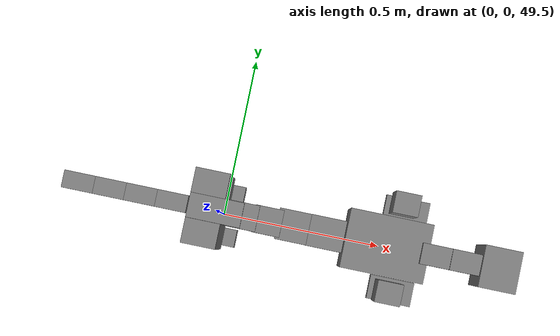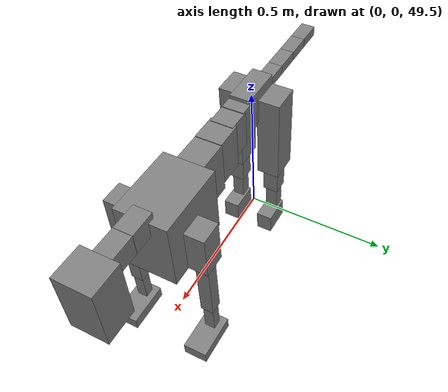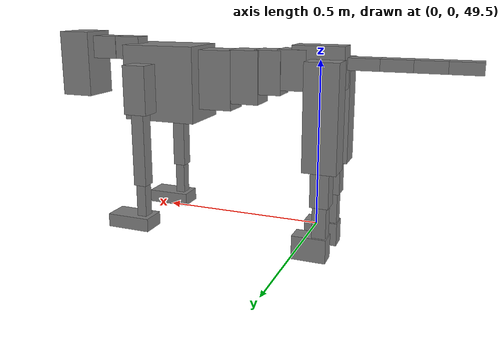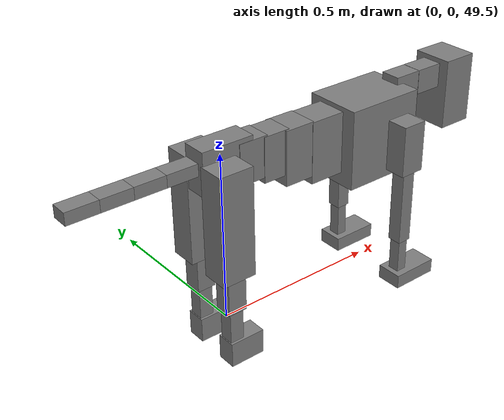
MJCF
<mujoco model="dog">

    <default>
        <joint armature="0.02" stiffness="1" damping="0.2" limited="true"/>
        <geom condim="3" friction="1 0.05 0.05" margin="0.01"/>
        <motor ctrllimited="true" ctrlrange="-1.0 1.0" forcelimited="true" gear="50"/>
    </default>

    <compiler inertiafromgeom="true" angle="radian"/>

    <option timestep="0.016" iterations="50" tolerance="1e-10" solver="Newton" jacobian="dense" cone="pyramidal"/>

    <size nconmax="20000" njmax="60000" nstack="5000000"/>
    <visual>
        <map force="0.1" zfar="30"/>
        <rgba haze="0.15 0.25 0.35 1"/>
        <quality shadowsize="2048"/>
        <global offwidth="800" offheight="800"/>
    </visual>

    <asset>
        <texture type="skybox" builtin="gradient" rgb1="0.3 0.5 0.7" rgb2="0 0 0" width="512" height="512"/>
        <texture name="texplane" type="2d" builtin="checker" rgb1=".2 .3 .4" rgb2=".1 0.15 0.2" width="512" height="512"
                 mark="cross" markrgb=".8 .8 .8"/>
        <texture name="texgeom" type="cube" builtin="flat" mark="cross" width="127" height="1278" rgb1="0.8 0.6 0.4"
                 rgb2="0.8 0.6 0.4" markrgb="1 1 1" random="0.01"/>

        <material name="matplane" reflectance="0.3" texture="texplane" texrepeat="1 1" texuniform="true"/>
        <material name="matgeom" texture="texgeom" texuniform="true" rgba="0.8 0.6 .4 1"/>
    </asset>

    <worldbody>
        <geom name="floor" pos="0 0 0" size="0 0 .25" type="plane" material="matplane" condim="3"/>

        <light directional="false" diffuse=".2 .2 .2" specular="0 0 0" pos="0 0 5" dir="0 0 -1" castshadow="false"/>
        <light mode="targetbodycom" target="torso" directional="false" diffuse=".8 .8 .8" specular="0.3 0.3 0.3"
               pos="0 0 4.0" dir="0 0 -1"/>

        <body name="root" pos="0 0 50">
            <freejoint name="root_1"/>
            <geom type="box" pos="0 0 -0.02" size="0.0774  0.0358  0.063" density="2030"/>

            <body name="spine1" pos="0.054 0 0">
                <joint name="spine1_y" axis="0 1 0" range="0 0.7" limited="true"/>
                <geom type="box" pos="0.02375 0 -0.03" size="0.04375  0.0375  0.05985" density="2030"/>

                <body name="spine2" pos="0.0612 0 0">
                    <joint name="spine2_y" axis="0 1 0" range="-0.15 0.15" limited="true"/>
                    <geom type="box" pos="0.03555  0  -0.04" size="0.04055  0.039  0.06615" density="2030"/>

                    <body name="spine3" pos="0.0730 0 0">
                        <joint name="spine3_y" axis="0 1 0" range="-0.15 0.15" limited="true"/>
                        <geom type="box" pos="0.03555  0  -0.057" size="0.04555  0.0445  0.081" density="2030"/>

                        <body name="spine4" pos="0.0780 0 0">
                            <joint name="spine4_y" axis="0 1 0" range="-0.15 0.15" limited="true"/>
                            <geom type="box" pos="0.05265  0  -0.07" size="0.05265  0.045  0.09135" density="2030"/>

                            <body name="torso" pos="0.1082 0 0">
                                <joint name="torso_y" axis="0 1 0" range="-0.15 0.15" limited="true"/>
                                <geom type="box" pos="0.11925  0  -0.085" size="0.11925  0.085  0.11745"
                                      density="2030"/>

                                <body name="neck1" pos="0.2160  0   0.0180">
                                    <joint name="neck1_y" axis="0 1 0" range="-1.2  -1" limited="true"/>
                                    <geom type="box" pos="0.0423  0  0" size="0.0423  0.03  0.036" density="2325"/>

                                    <body name="neck2" pos="0.0853  0  0">
                                        <joint name="neck2_y" axis="0 1 0" range="0.1  0" limited="true"/>
                                        <geom type="box" pos="0.0423  0  0" size="0.0423  0.03  0.036" density="2325"/>

                                        <body name="head" pos="0.0853  0  0">
                                            <joint name="head_y" axis="0 1 0" range="-0.3  -0.2" limited="true"/>
                                            <geom type="box" pos="0.0531  0  -0.055" size="0.0531  0.06  0.1044"
                                                  density="4030"/>

                                        </body>
                                    </body>
                                </body>

                                <body name="front_shoulder" pos="0.156  0   -0.0480">
                                    <joint name="front_shoulder_y" axis="0 1 0" range="-1 1.5" limited="true"/>
                                    <geom type="box" pos="0 0.13 -0.0483" size="0.0372  0.0318  0.0750" density="1158"/>
                                    <geom type="box" pos="0 -0.13 -0.0483" size="0.0372  0.0318  0.0750"
                                          density="1158"/>

                                    <body name="front_elbow" pos="0  0  -0.0967">
                                        <joint name="front_elbow_y" axis="0 1 0" range="-2 0" limited="true"/>
                                        <geom type="box" pos="0 0.13 -0.1267" size="0.0206  0.0211  0.1267"
                                              density="1081"/>
                                        <geom type="box" pos="0 -0.13 -0.1267" size="0.0206  0.0211  0.1267"
                                              density="1081"/>

                                        <body name="front_wrist" pos="0  0  -0.2533">
                                            <joint name="front_wrist_y" axis="0 1 0" range="-0.2 0" limited="true"/>
                                            <geom type="box" pos="0 0.13 -0.0580" size="0.0156  0.0173  0.0711"
                                                  density="1664"/>
                                            <geom type="box" pos="0 -0.13 -0.0580" size="0.0156  0.0173  0.0711"
                                                  density="1664"/>

                                            <body name="front_finger_end" pos="0  0  -0.1159">
                                                <joint name="front_finger_y" axis="0 1 0" range="-0.4 1"
                                                       limited="true"/>
                                                <geom type="box" pos="0.0386  0.13  -0.0059"
                                                      size="0.0707  0.0386  0.0209" density="1515"/>
                                                <geom type="box" pos="0.0386  -0.13  -0.0059"
                                                      size="0.0707  0.0386  0.0209" density="1515"/>

                                            </body>

                                        </body>
                                    </body>
                                </body>

                            </body>
                        </body>
                    </body>
                </body>
            </body>

            <body name="back_hip" pos="-0.03 0 -0.018">
                <joint name="back_hip_y" axis="0 1 0" range="-1.5 0.3" limited="true"/>
                <geom type="box" pos="0 0.07 -0.1355" size="0.0505  0.0396  0.1583" density="1154"/>
                <geom type="box" pos="0 -0.07 -0.1355" size="0.0505  0.0396  0.1583" density="1154"/>

                <body name="back_knee" pos="0  0  -0.2710">
                    <joint name="back_knee_y" axis="0 1 0" range="0 2.8" limited="true"/>
                    <geom type="box" pos="0 0.07 -0.0563" size="0.0278  0.0274  0.0718" density="1227"/>
                    <geom type="box" pos="0 -0.07 -0.0563" size="0.0278  0.0274  0.0718" density="1227"/>

                    <body name="back_ankle" pos="0  0  -0.1125">
                        <joint name="back_ankle_y" axis="0 1 0" range="-2.2 0" limited="true"/>
                        <geom type="box" pos="0 0.07 -0.0629" size="0.0209  0.0209  0.0742" density="1284"/>
                        <geom type="box" pos="0 -0.07 -0.0629" size="0.0209  0.0209  0.0742" density="1284"/>

                        <body name="back_toe_end" pos="0  0  -0.1258">
                            <joint name="back_toe_y" axis="0 1 0" range="-0.4 1" limited="true"/>
                            <geom type="box" pos="0.0284  0.07  -0.0219" size="0.0521  0.0284  0.0369" density="1515"/>
                            <geom type="box" pos="0.0284  -0.07  -0.0219" size="0.0521  0.0284  0.0369" density="1515"/>

                        </body>
                    </body>
                </body>
            </body>

            <body name="tail1" pos="-0.074 0 -0.006">
                <joint name="tail1_y" axis="0 1 0" range="-0.2 0.2" limited="true"/>
                <geom type="box" pos="-0.0536  0  0" size="0.045  0.025  0.0175" density="1587"/>

                <body name="tail2" pos="-0.09 0 0">
                    <joint name="tail2_y" axis="0 1 0" range="-0.2 0.2" limited="true"/>
                    <geom type="box" pos="-0.0536  0  0" size="0.045  0.025  0.0175" density="1587"/>

                    <body name="tail3" pos="-0.09 0 0">
                        <joint name="tail3_y" axis="0 1 0" range="-0.2 0.2" limited="true"/>
                        <geom type="box" pos="-0.0536  0  0" size="0.045  0.025  0.0175" density="1587"/>

                        <body name="tail4" pos="-0.09 0 0">
                            <joint name="tail4_y" axis="0 1 0" range="-0.2 0.2" limited="true"/>
                            <geom type="box" pos="-0.0536  0  0" size="0.045  0.025  0.0175" density="1587"/>

                        </body>
                    </body>
                </body>
            </body>
        </body>
    </worldbody>

    <actuator>
        <motor joint="spine1_y" forcerange="-150 150     "/>
        <motor joint="spine2_y" forcerange="-150 150     "/>
        <motor joint="spine3_y" forcerange="-150 150     "/>
        <motor joint="spine4_y" forcerange="-150 150     "/>
        <motor joint="torso_y" forcerange="-150 150     "/>
        <motor joint="neck1_y" forcerange="-100 100       "/>
        <motor joint="neck2_y" forcerange="-100 100       "/>
        <motor joint="head_y" forcerange="-150 150       "/>
        <motor joint="front_shoulder_y" forcerange="-181.27 130.44"/>
        <motor joint="front_elbow_y" forcerange="-107.34 145.88"/>
        <motor joint="front_wrist_y" forcerange="-87.28 51.24"/>
        <motor joint="front_finger_y" forcerange="-71.11 94.51"/>
        <motor joint="back_hip_y" forcerange="-377.22 350.85"/>
        <motor joint="back_knee_y" forcerange="-232.18 365.68"/>
        <motor joint="back_angle_y" forcerange="-156.76 77.81"/>
        <motor joint="back_toe_y" forcerange="-62.21 85.03"/>
        <motor joint="tail1_y" forcerange="-50 50     "/>
        <motor joint="tail2_y" forcerange="-50 50     "/>
        <motor joint="tail3_y" forcerange="-50 50     "/>
        <motor joint="tail4_y" forcerange="-50 50     "/>
    </actuator>
</mujoco>
